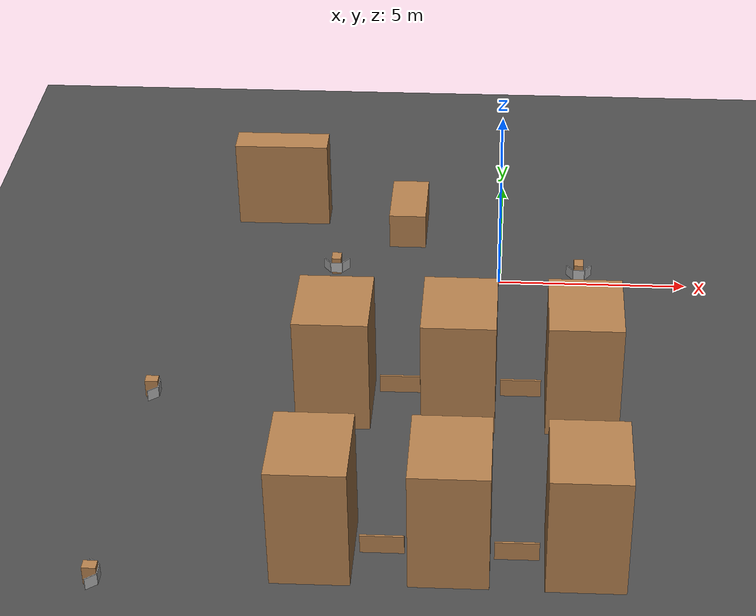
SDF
<sdf version="1.6">
 <world name="default">
  <model name="ground_plane">
   <static>1</static>
   <link name="link">
    <collision name="collision">
     <geometry><plane><normal>0 0 1</normal><size>100 100</size></plane></geometry>
     <surface><friction><ode><mu>100</mu><mu2>50</mu2></ode></friction></surface>
    </collision>
    <visual name="visual">
     <cast_shadows>0</cast_shadows>
     <geometry><plane><normal>0 0 1</normal><size>100 100</size></plane></geometry>
     <material>
      <script><uri>file://media/materials/scripts/gazebo.material</uri><name>Gazebo/DarkGrey</name></script>
     </material>
    </visual>
   </link>
  </model>
  <model name="unit_box_clone">
   <pose>-0.889956 -5.56511 1.53205 1e-06 0 0.000132</pose>
   <link name="link">
    <inertial>
     <mass>1</mass>
     <inertia>
      <ixx>0.166667</ixx>
      <ixy>0</ixy>
      <ixz>0</ixz>
      <iyy>0.166667</iyy>
      <iyz>0</iyz>
      <izz>0.166667</izz>
     </inertia>
    </inertial>
    <collision name="collision"><geometry><box><size>1.78607 2.17889 3.06409</size></box></geometry></collision>
    <visual name="visual">
     <geometry><box><size>1.78607 2.17889 3.06409</size></box></geometry>
     <material>
      <script><name>Gazebo/Wood</name><uri>file://media/materials/scripts/gazebo.material</uri></script>
     </material>
    </visual>
   </link>
  </model>
  <model name="unit_box_clone_0">
   <pose>2.11215 -5.52237 1.53205 -1e-06 0 0.00019</pose>
   <link name="link">
    <inertial>
     <mass>1</mass>
     <inertia>
      <ixx>0.166667</ixx>
      <ixy>0</ixy>
      <ixz>0</ixz>
      <iyy>0.166667</iyy>
      <iyz>0</iyz>
      <izz>0.166667</izz>
     </inertia>
    </inertial>
    <collision name="collision"><geometry><box><size>1.78607 2.17889 3.06409</size></box></geometry></collision>
    <visual name="visual">
     <geometry><box><size>1.78607 2.17889 3.06409</size></box></geometry>
     <material>
      <script><name>Gazebo/Wood</name><uri>file://media/materials/scripts/gazebo.material</uri></script>
     </material>
    </visual>
   </link>
  </model>
  <model name="unit_box_clone_6">
   <pose>-3.9254 -11.0743 1.53204 -2e-06 -0 0.000138</pose>
   <link name="link">
    <inertial>
     <mass>1</mass>
     <inertia>
      <ixx>0.166667</ixx>
      <ixy>0</ixy>
      <ixz>0</ixz>
      <iyy>0.166667</iyy>
      <iyz>0</iyz>
      <izz>0.166667</izz>
     </inertia>
    </inertial>
    <collision name="collision"><geometry><box><size>1.78607 2.17889 3.06409</size></box></geometry></collision>
    <visual name="visual">
     <geometry><box><size>1.78607 2.17889 3.06409</size></box></geometry>
     <material>
      <script><name>Gazebo/Wood</name><uri>file://media/materials/scripts/gazebo.material</uri></script>
     </material>
    </visual>
   </link>
  </model>
  <model name="unit_box_clone_7">
   <pose>-0.889964 -11.0603 1.53205 -1e-06 0 0.000154</pose>
   <link name="link">
    <inertial>
     <mass>1</mass>
     <inertia>
      <ixx>0.166667</ixx>
      <ixy>0</ixy>
      <ixz>0</ixz>
      <iyy>0.166667</iyy>
      <iyz>0</iyz>
      <izz>0.166667</izz>
     </inertia>
    </inertial>
    <collision name="collision"><geometry><box><size>1.78607 2.17889 3.06409</size></box></geometry></collision>
    <visual name="visual">
     <geometry><box><size>1.78607 2.17889 3.06409</size></box></geometry>
     <material>
      <script><name>Gazebo/Wood</name><uri>file://media/materials/scripts/gazebo.material</uri></script>
     </material>
    </visual>
   </link>
  </model>
  <model name="unit_box_clone_8">
   <pose>2.11025 -11.0781 1.53205 1e-06 0 0.00015</pose>
   <link name="link">
    <inertial>
     <mass>1</mass>
     <inertia>
      <ixx>0.166667</ixx>
      <ixy>0</ixy>
      <ixz>0</ixz>
      <iyy>0.166667</iyy>
      <iyz>0</iyz>
      <izz>0.166667</izz>
     </inertia>
    </inertial>
    <collision name="collision"><geometry><box><size>1.78607 2.17889 3.06409</size></box></geometry></collision>
    <visual name="visual">
     <geometry><box><size>1.78607 2.17889 3.06409</size></box></geometry>
     <material>
      <script><name>Gazebo/Wood</name><uri>file://media/materials/scripts/gazebo.material</uri></script>
     </material>
    </visual>
   </link>
  </model>
  <model name="Aruco tag100">
   <static>1</static>
   <link name="robot_link">
    <visual name="body_visual">
     <geometry><box><size>0.3 0.3 0.02</size></box></geometry>
     <material>
      <script><uri>model://tag_100/materials/scripts/tag.material</uri><name>aruco_tag_100</name></script>
     </material>
    </visual>
   </link>
   <pose>2.13797 0.140124 0.2 1.57 -0 0</pose>
  </model>
  <model name="Aruco tag100_clone">
   <static>1</static>
   <link name="robot_link">
    <visual name="body_visual">
     <geometry><box><size>0.3 0.3 0.02</size></box></geometry>
     <material>
      <script><uri>model://tag_100/materials/scripts/tag.material</uri><name>aruco_tag_100</name></script>
     </material>
    </visual>
   </link>
   <pose>1.89484 0.266603 0.2 1.57028 -0.000603 -0.96</pose>
  </model>
  <model name="Aruco tag100_clone_clone">
   <static>1</static>
   <link name="robot_link">
    <visual name="body_visual">
     <geometry><box><size>0.3 0.3 0.02</size></box></geometry>
     <material>
      <script><uri>model://tag_100/materials/scripts/tag.material</uri><name>aruco_tag_100</name></script>
     </material>
    </visual>
   </link>
   <pose>2.38303 0.266773 0.2 1.57028 -0.000603 0.96</pose>
  </model>
  <model name="Support_box_wood_0">
   <link name="link">
    <inertial>
     <mass>0.0406949</mass>
     <inertia>
      <ixx>0.00114102</ixx>
      <ixy>0</ixy>
      <ixz>0</ixz>
      <iyy>0.00102768</iyy>
      <iyz>0</iyz>
      <izz>0.000581951</izz>
     </inertia>
    </inertial>
    <pose>0.062754 0.860403 -0.243846 0 -0 0</pose>
    <visual name="visual">
     <geometry><box><size>0.252854 0.320175 0.483682</size></box></geometry>
     <material>
      <script><name>Gazebo/Wood</name><uri>file://media/materials/scripts/gazebo.material</uri></script>
      <shader type="vertex"><normal_map>__default__</normal_map></shader>
      <ambient>0.3 0.3 0.3 1</ambient>
      <diffuse>0.7 0.7 0.7 1</diffuse>
      <specular>0.01 0.01 0.01 1</specular>
      <emissive>0 0 0 1</emissive>
     </material>
    </visual>
    <visual name="ModelPreview_4::link::visual_1">
     <geometry><box><size>0.252854 0.320175 0.483682</size></box></geometry>
     <material>
      <script><name>Gazebo/Wood</name><uri>file://media/materials/scripts/gazebo.material</uri></script>
      <shader type="vertex"><normal_map>__default__</normal_map></shader>
      <ambient>0.3 0.3 0.3 1</ambient>
      <diffuse>0.7 0.7 0.7 1</diffuse>
      <specular>0.01 0.01 0.01 1</specular>
      <emissive>0 0 0 1</emissive>
     </material>
    </visual>
    <collision name="collision">
     <geometry><box><size>0.262854 0.320175 0.483683</size></box></geometry>
     <surface>
      <friction>
       <ode><mu>1</mu><mu2>1</mu2><fdir1>0 0 0</fdir1><slip1>0</slip1><slip2>0</slip2></ode>
       <torsional>
        <coefficient>1</coefficient>
        <patch_radius>0</patch_radius>
        <surface_radius>0</surface_radius>
        <use_patch_radius>1</use_patch_radius>
        <ode><slip>0</slip></ode>
       </torsional>
      </friction>
      <bounce><restitution_coefficient>0</restitution_coefficient><threshold>1e+06</threshold></bounce>
      <contact>
       <collide_without_contact>0</collide_without_contact>
       <collide_without_contact_bitmask>1</collide_without_contact_bitmask>
       <collide_bitmask>1</collide_bitmask>
       <ode>
        <soft_cfm>0</soft_cfm>
        <soft_erp>0.2</soft_erp>
        <kp>1e+13</kp>
        <kd>1</kd>
        <max_vel>0.01</max_vel>
        <min_depth>0</min_depth>
       </ode>
       <bullet>
        <split_impulse>1</split_impulse>
        <split_impulse_penetration_threshold>-0.01</split_impulse_penetration_threshold>
        <soft_cfm>0</soft_cfm>
        <soft_erp>0.2</soft_erp>
        <kp>1e+13</kp>
        <kd>1</kd>
       </bullet>
      </contact>
     </surface>
    </collision>
   </link>
   <static>0</static>
   <pose>-4.49737 -0.49187 0.485697 -1.3e-05 0 0.002179</pose>
  </model>
  <model name="Support_box_wood">
   <link name="link">
    <inertial>
     <mass>0.0406949</mass>
     <inertia>
      <ixx>0.00114102</ixx>
      <ixy>0</ixy>
      <ixz>0</ixz>
      <iyy>0.00102768</iyy>
      <iyz>0</iyz>
      <izz>0.000581951</izz>
     </inertia>
    </inertial>
    <pose>0.062754 0.860403 -0.243846 0 -0 0</pose>
    <visual name="visual">
     <geometry><box><size>0.252854 0.320175 0.483682</size></box></geometry>
     <material>
      <script><name>Gazebo/Wood</name><uri>file://media/materials/scripts/gazebo.material</uri></script>
      <shader type="vertex"><normal_map>__default__</normal_map></shader>
      <ambient>0.3 0.3 0.3 1</ambient>
      <diffuse>0.7 0.7 0.7 1</diffuse>
      <specular>0.01 0.01 0.01 1</specular>
      <emissive>0 0 0 1</emissive>
     </material>
    </visual>
    <visual name="ModelPreview_4::link::visual_1">
     <geometry><box><size>0.252854 0.320175 0.483682</size></box></geometry>
     <material>
      <script><name>Gazebo/Wood</name><uri>file://media/materials/scripts/gazebo.material</uri></script>
      <shader type="vertex"><normal_map>__default__</normal_map></shader>
      <ambient>0.3 0.3 0.3 1</ambient>
      <diffuse>0.7 0.7 0.7 1</diffuse>
      <specular>0.01 0.01 0.01 1</specular>
      <emissive>0 0 0 1</emissive>
     </material>
    </visual>
    <collision name="collision">
     <geometry><box><size>0.262854 0.320175 0.483683</size></box></geometry>
     <surface>
      <friction>
       <ode><mu>1</mu><mu2>1</mu2><fdir1>0 0 0</fdir1><slip1>0</slip1><slip2>0</slip2></ode>
       <torsional>
        <coefficient>1</coefficient>
        <patch_radius>0</patch_radius>
        <surface_radius>0</surface_radius>
        <use_patch_radius>1</use_patch_radius>
        <ode><slip>0</slip></ode>
       </torsional>
      </friction>
      <bounce><restitution_coefficient>0</restitution_coefficient><threshold>1e+06</threshold></bounce>
      <contact>
       <collide_without_contact>0</collide_without_contact>
       <collide_without_contact_bitmask>1</collide_without_contact_bitmask>
       <collide_bitmask>1</collide_bitmask>
       <ode>
        <soft_cfm>0</soft_cfm>
        <soft_erp>0.2</soft_erp>
        <kp>1e+13</kp>
        <kd>1</kd>
        <max_vel>0.01</max_vel>
        <min_depth>0</min_depth>
       </ode>
       <bullet>
        <split_impulse>1</split_impulse>
        <split_impulse_penetration_threshold>-0.01</split_impulse_penetration_threshold>
        <soft_cfm>0</soft_cfm>
        <soft_erp>0.2</soft_erp>
        <kp>1e+13</kp>
        <kd>1</kd>
       </bullet>
      </contact>
     </surface>
    </collision>
   </link>
   <static>0</static>
   <pose>-7.6449 -5.50951 0.485687 0 -0 1.57065</pose>
  </model>
  <model name="Aruco tag200">
   <static>1</static>
   <link name="robot_link">
    <visual name="body_visual">
     <geometry><box><size>0.3 0.3 0.02</size></box></geometry>
     <material>
      <script><uri>model://tag_200/materials/scripts/tag.material</uri><name>aruco_tag_200</name></script>
     </material>
    </visual>
   </link>
   <pose>-8.33203 -5.45397 0.2 3.14159 1.57 3.14159</pose>
  </model>
  <model name="Aruco tag200_clone">
   <static>1</static>
   <link name="robot_link">
    <visual name="body_visual">
     <geometry><box><size>0.3 0.3 0.02</size></box></geometry>
     <material>
      <script><uri>model://tag_200/materials/scripts/tag.material</uri><name>aruco_tag_200</name></script>
     </material>
    </visual>
   </link>
   <pose>-8.4533 -5.20272 0.2 -3.14088 1.57 0.91071</pose>
  </model>
  <model name="Aruco tag200_clone_clone">
   <static>1</static>
   <link name="robot_link">
    <visual name="body_visual">
     <geometry><box><size>0.3 0.3 0.02</size></box></geometry>
     <material>
      <script><uri>model://tag_200/materials/scripts/tag.material</uri><name>aruco_tag_200</name></script>
     </material>
    </visual>
   </link>
   <pose>-8.45452 -5.70482 0.2 3.14124 1.57 -0.911069</pose>
  </model>
  <model name="Support_box_wood_clone">
   <link name="link">
    <inertial>
     <mass>0.0406949</mass>
     <inertia>
      <ixx>0.00114102</ixx>
      <ixy>0</ixy>
      <ixz>0</ixz>
      <iyy>0.00102768</iyy>
      <iyz>0</iyz>
      <izz>0.000581951</izz>
     </inertia>
    </inertial>
    <pose>0.062754 0.860403 -0.243846 0 -0 0</pose>
    <visual name="visual">
     <geometry><box><size>0.252854 0.320175 0.483682</size></box></geometry>
     <material>
      <script><name>Gazebo/Wood</name><uri>file://media/materials/scripts/gazebo.material</uri></script>
      <shader type="vertex"><normal_map>__default__</normal_map></shader>
      <ambient>0.3 0.3 0.3 1</ambient>
      <diffuse>0.7 0.7 0.7 1</diffuse>
      <specular>0.01 0.01 0.01 1</specular>
      <emissive>0 0 0 1</emissive>
     </material>
    </visual>
    <visual name="ModelPreview_4::link::visual_1">
     <geometry><box><size>0.252854 0.320175 0.483682</size></box></geometry>
     <material>
      <script><name>Gazebo/Wood</name><uri>file://media/materials/scripts/gazebo.material</uri></script>
      <shader type="vertex"><normal_map>__default__</normal_map></shader>
      <ambient>0.3 0.3 0.3 1</ambient>
      <diffuse>0.7 0.7 0.7 1</diffuse>
      <specular>0.01 0.01 0.01 1</specular>
      <emissive>0 0 0 1</emissive>
     </material>
    </visual>
    <collision name="collision">
     <geometry><box><size>0.262854 0.320175 0.483683</size></box></geometry>
     <surface>
      <friction>
       <ode><mu>1</mu><mu2>1</mu2><fdir1>0 0 0</fdir1><slip1>0</slip1><slip2>0</slip2></ode>
       <torsional>
        <coefficient>1</coefficient>
        <patch_radius>0</patch_radius>
        <surface_radius>0</surface_radius>
        <use_patch_radius>1</use_patch_radius>
        <ode><slip>0</slip></ode>
       </torsional>
      </friction>
      <bounce><restitution_coefficient>0</restitution_coefficient><threshold>1e+06</threshold></bounce>
      <contact>
       <collide_without_contact>0</collide_without_contact>
       <collide_without_contact_bitmask>1</collide_without_contact_bitmask>
       <collide_bitmask>1</collide_bitmask>
       <ode>
        <soft_cfm>0</soft_cfm>
        <soft_erp>0.2</soft_erp>
        <kp>1e+13</kp>
        <kd>1</kd>
        <max_vel>0.01</max_vel>
        <min_depth>0</min_depth>
       </ode>
       <bullet>
        <split_impulse>1</split_impulse>
        <split_impulse_penetration_threshold>-0.01</split_impulse_penetration_threshold>
        <soft_cfm>0</soft_cfm>
        <soft_erp>0.2</soft_erp>
        <kp>1e+13</kp>
        <kd>1</kd>
       </bullet>
      </contact>
     </surface>
    </collision>
   </link>
   <static>0</static>
   <pose>2.06843 -0.552281 0.485687 0 -0 4e-06</pose>
  </model>
  <model name="Aruco tag101">
   <static>1</static>
   <link name="robot_link">
    <visual name="body_visual">
     <geometry><box><size>0.3 0.3 0.02</size></box></geometry>
     <material>
      <script><uri>model://tag_101/materials/scripts/tag.material</uri><name>aruco_tag_101</name></script>
     </material>
    </visual>
   </link>
   <pose>-4.43997 0.20897 0.2 1.57 -0 0</pose>
  </model>
  <model name="Aruco tag101_clone">
   <static>1</static>
   <link name="robot_link">
    <visual name="body_visual">
     <geometry><box><size>0.3 0.3 0.02</size></box></geometry>
     <material>
      <script><uri>model://tag_101/materials/scripts/tag.material</uri><name>aruco_tag_101</name></script>
     </material>
    </visual>
   </link>
   <pose>-4.18968 0.331448 0.2 1.57 -0 0.909999</pose>
  </model>
  <model name="Aruco tag101_clone_clone">
   <static>1</static>
   <link name="robot_link">
    <visual name="body_visual">
     <geometry><box><size>0.3 0.3 0.02</size></box></geometry>
     <material>
      <script><uri>model://tag_101/materials/scripts/tag.material</uri><name>aruco_tag_101</name></script>
     </material>
    </visual>
   </link>
   <pose>-4.69039 0.331481 0.2 1.57 -0 -0.909999</pose>
  </model>
  <model name="Support_box_wood_clone_0">
   <link name="link">
    <inertial>
     <mass>0.0406949</mass>
     <inertia>
      <ixx>0.00114102</ixx>
      <ixy>0</ixy>
      <ixz>0</ixz>
      <iyy>0.00102768</iyy>
      <iyz>0</iyz>
      <izz>0.000581951</izz>
     </inertia>
    </inertial>
    <pose>0.062754 0.860403 -0.243846 0 -0 0</pose>
    <visual name="visual">
     <geometry><box><size>0.252854 0.320175 0.483682</size></box></geometry>
     <material>
      <script><name>Gazebo/Wood</name><uri>file://media/materials/scripts/gazebo.material</uri></script>
      <shader type="vertex"><normal_map>__default__</normal_map></shader>
      <ambient>0.3 0.3 0.3 1</ambient>
      <diffuse>0.7 0.7 0.7 1</diffuse>
      <specular>0.01 0.01 0.01 1</specular>
      <emissive>0 0 0 1</emissive>
     </material>
    </visual>
    <visual name="ModelPreview_4::link::visual_1">
     <geometry><box><size>0.252854 0.320175 0.483682</size></box></geometry>
     <material>
      <script><name>Gazebo/Wood</name><uri>file://media/materials/scripts/gazebo.material</uri></script>
      <shader type="vertex"><normal_map>__default__</normal_map></shader>
      <ambient>0.3 0.3 0.3 1</ambient>
      <diffuse>0.7 0.7 0.7 1</diffuse>
      <specular>0.01 0.01 0.01 1</specular>
      <emissive>0 0 0 1</emissive>
     </material>
    </visual>
    <collision name="collision">
     <geometry><box><size>0.262854 0.320175 0.483683</size></box></geometry>
     <surface>
      <friction>
       <ode><mu>1</mu><mu2>1</mu2><fdir1>0 0 0</fdir1><slip1>0</slip1><slip2>0</slip2></ode>
       <torsional>
        <coefficient>1</coefficient>
        <patch_radius>0</patch_radius>
        <surface_radius>0</surface_radius>
        <use_patch_radius>1</use_patch_radius>
        <ode><slip>0</slip></ode>
       </torsional>
      </friction>
      <bounce><restitution_coefficient>0</restitution_coefficient><threshold>1e+06</threshold></bounce>
      <contact>
       <collide_without_contact>0</collide_without_contact>
       <collide_without_contact_bitmask>1</collide_without_contact_bitmask>
       <collide_bitmask>1</collide_bitmask>
       <ode>
        <soft_cfm>0</soft_cfm>
        <soft_erp>0.2</soft_erp>
        <kp>1e+13</kp>
        <kd>1</kd>
        <max_vel>0.01</max_vel>
        <min_depth>0</min_depth>
       </ode>
       <bullet>
        <split_impulse>1</split_impulse>
        <split_impulse_penetration_threshold>-0.01</split_impulse_penetration_threshold>
        <soft_cfm>0</soft_cfm>
        <soft_erp>0.2</soft_erp>
        <kp>1e+13</kp>
        <kd>1</kd>
       </bullet>
      </contact>
     </surface>
    </collision>
   </link>
   <static>0</static>
   <pose>-7.84329 -12.327 0.485687 0 -0 1.57129</pose>
  </model>
  <model name="Aruco tag103">
   <static>1</static>
   <link name="robot_link">
    <visual name="body_visual">
     <geometry><box><size>0.3 0.3 0.02</size></box></geometry>
     <material>
      <script><uri>model://tag_103/materials/scripts/tag.material</uri><name>aruco_tag_103</name></script>
     </material>
    </visual>
   </link>
   <pose>-8.5298 -12.2644 0.2 -5.1e-05 1.57 5.1e-05</pose>
  </model>
  <model name="Aruco tag103_clone">
   <static>1</static>
   <link name="robot_link">
    <visual name="body_visual">
     <geometry><box><size>0.3 0.3 0.02</size></box></geometry>
     <material>
      <script><uri>model://tag_103/materials/scripts/tag.material</uri><name>aruco_tag_103</name></script>
     </material>
    </visual>
   </link>
   <pose>-8.64959 -12.0145 0.2 -0.001656 1.57 0.909889</pose>
  </model>
  <model name="Aruco tag103_clone_clone">
   <static>1</static>
   <link name="robot_link">
    <visual name="body_visual">
     <geometry><box><size>0.3 0.3 0.02</size></box></geometry>
     <material>
      <script><uri>model://tag_103/materials/scripts/tag.material</uri><name>aruco_tag_103</name></script>
     </material>
    </visual>
   </link>
   <pose>-8.65279 -12.5152 0.2 -0.001545 1.57 -0.911442</pose>
  </model>
  <model name="unit_box_0">
   <link name="link">
    <inertial>
     <mass>206.513</mass>
     <inertia><ixx>115.69</ixx><ixy>0</ixy><ixz>0</ixz><iyy>216.208</iyy><iyz>0</iyz><izz>122.645</izz></inertia>
    </inertial>
    <pose>0 0.254021 0.771856 0 -0 0</pose>
    <visual name="visual">
     <geometry><box><size>2.54631 0.801811 2.46568</size></box></geometry>
     <material>
      <script><name>Gazebo/Wood</name><uri>file://media/materials/scripts/gazebo.material</uri></script>
     </material>
    </visual>
    <collision name="collision">
     <geometry><box><size>2.54631 0.801811 2.46568</size></box></geometry>
     <surface>
      <friction>
       <ode><mu>1</mu><mu2>1</mu2><fdir1>0 0 0</fdir1><slip1>0</slip1><slip2>0</slip2></ode>
       <torsional>
        <coefficient>1</coefficient>
        <patch_radius>0</patch_radius>
        <surface_radius>0</surface_radius>
        <use_patch_radius>1</use_patch_radius>
        <ode><slip>0</slip></ode>
       </torsional>
      </friction>
      <bounce><restitution_coefficient>0</restitution_coefficient><threshold>1e+06</threshold></bounce>
      <contact>
       <collide_without_contact>0</collide_without_contact>
       <collide_without_contact_bitmask>1</collide_without_contact_bitmask>
       <collide_bitmask>1</collide_bitmask>
       <ode>
        <soft_cfm>0</soft_cfm>
        <soft_erp>0.2</soft_erp>
        <kp>1e+13</kp>
        <kd>1</kd>
        <max_vel>0.01</max_vel>
        <min_depth>0</min_depth>
       </ode>
       <bullet>
        <split_impulse>1</split_impulse>
        <split_impulse_penetration_threshold>-0.01</split_impulse_penetration_threshold>
        <soft_cfm>0</soft_cfm>
        <soft_erp>0.2</soft_erp>
        <kp>1e+13</kp>
        <kd>1</kd>
       </bullet>
      </contact>
     </surface>
    </collision>
   </link>
   <static>0</static>
   <pose>-6.14285 2.9103 0.460984 1e-06 -0 0.005648</pose>
  </model>
  <model name="unit_box_1">
   <link name="link">
    <inertial>
     <mass>4.46992</mass>
     <inertia><ixx>1.7353</ixx><ixy>0</ixy><ixz>0</ixz><iyy>0.744987</iyy><iyz>0</iyz><izz>1.7353</izz></inertia>
    </inertial>
    <visual name="visual">
     <geometry><box><size>1 1.91274 1</size></box></geometry>
     <material>
      <script><name>Gazebo/Wood</name><uri>file://media/materials/scripts/gazebo.material</uri></script>
     </material>
    </visual>
    <collision name="collision">
     <geometry><box><size>1 1.91274 1</size></box></geometry>
     <surface>
      <friction>
       <ode><mu>1</mu><mu2>1</mu2><fdir1>0 0 0</fdir1><slip1>0</slip1><slip2>0</slip2></ode>
       <torsional>
        <coefficient>1</coefficient>
        <patch_radius>0</patch_radius>
        <surface_radius>0</surface_radius>
        <use_patch_radius>1</use_patch_radius>
        <ode><slip>0</slip></ode>
       </torsional>
      </friction>
      <bounce><restitution_coefficient>0</restitution_coefficient><threshold>1e+06</threshold></bounce>
      <contact>
       <collide_without_contact>0</collide_without_contact>
       <collide_without_contact_bitmask>1</collide_without_contact_bitmask>
       <collide_bitmask>1</collide_bitmask>
       <ode>
        <soft_cfm>0</soft_cfm>
        <soft_erp>0.2</soft_erp>
        <kp>1e+13</kp>
        <kd>1</kd>
        <max_vel>0.01</max_vel>
        <min_depth>0</min_depth>
       </ode>
       <bullet>
        <split_impulse>1</split_impulse>
        <split_impulse_penetration_threshold>-0.01</split_impulse_penetration_threshold>
        <soft_cfm>0</soft_cfm>
        <soft_erp>0.2</soft_erp>
        <kp>1e+13</kp>
        <kd>1</kd>
       </bullet>
      </contact>
     </surface>
    </collision>
   </link>
   <static>0</static>
   <pose>-2.58138 2.6093 0.5 0 -0 1e-06</pose>
  </model>
  <model name="unit_box">
   <link name="link">
    <inertial>
     <mass>1648.57</mass>
     <inertia><ixx>1879.79</ixx><ixy>0</ixy><ixz>0</ixz><iyy>1718.68</iyy><iyz>0</iyz><izz>1060.42</izz></inertia>
    </inertial>
    <pose>-0 -0 -1.39134 0 -0 0</pose>
    <visual name="visual">
     <geometry><box><size>1.80916 2.1085 3.03929</size></box></geometry>
     <material>
      <script><name>Gazebo/Wood</name><uri>file://media/materials/scripts/gazebo.material</uri></script>
     </material>
    </visual>
    <collision name="collision">
     <geometry><box><size>1.80916 2.1085 3.03929</size></box></geometry>
     <surface>
      <friction>
       <ode><mu>1</mu><mu2>1</mu2><fdir1>0 0 0</fdir1><slip1>0</slip1><slip2>0</slip2></ode>
       <torsional>
        <coefficient>1</coefficient>
        <patch_radius>0</patch_radius>
        <surface_radius>0</surface_radius>
        <use_patch_radius>1</use_patch_radius>
        <ode><slip>0</slip></ode>
       </torsional>
      </friction>
      <bounce><restitution_coefficient>0</restitution_coefficient><threshold>1e+06</threshold></bounce>
      <contact>
       <collide_without_contact>0</collide_without_contact>
       <collide_without_contact_bitmask>1</collide_without_contact_bitmask>
       <collide_bitmask>1</collide_bitmask>
       <ode>
        <soft_cfm>0</soft_cfm>
        <soft_erp>0.2</soft_erp>
        <kp>1e+13</kp>
        <kd>1</kd>
        <max_vel>0.01</max_vel>
        <min_depth>0</min_depth>
       </ode>
       <bullet>
        <split_impulse>1</split_impulse>
        <split_impulse_penetration_threshold>-0.01</split_impulse_penetration_threshold>
        <soft_cfm>0</soft_cfm>
        <soft_erp>0.2</soft_erp>
        <kp>1e+13</kp>
        <kd>1</kd>
       </bullet>
      </contact>
     </surface>
    </collision>
   </link>
   <static>0</static>
   <pose>-3.91562 -5.5599 2.91099 0 -0 0.000128</pose>
  </model>
  <model name="fence_clone_1">
   <link name="link">
    <inertial>
     <mass>0.0236206</mass>
     <inertia>
      <ixx>0.00046005</ixx>
      <ixy>0</ixy>
      <ixz>0</ixz>
      <iyy>0.00242368</iyy>
      <iyz>0</iyz>
      <izz>0.00197313</izz>
     </inertia>
    </inertial>
    <pose>0.164119 -0.397459 0.001761 0 -0 0</pose>
    <visual name="visual">
     <geometry><box><size>1 0.049108 0.480943</size></box></geometry>
     <material>
      <script><name>Gazebo/Wood</name><uri>file://media/materials/scripts/gazebo.material</uri></script>
      <shader type="pixel"><normal_map>__default__</normal_map></shader>
      <ambient>1 1 1 1</ambient>
      <diffuse>1 1 1 1</diffuse>
      <specular>0.2 0.2 0.2 1</specular>
      <emissive>0 0 0 1</emissive>
     </material>
    </visual>
    <collision name="collision">
     <geometry><box><size>1 0.049108 0.480943</size></box></geometry>
     <surface>
      <friction>
       <ode><mu>1</mu><mu2>1</mu2><fdir1>0 0 0</fdir1><slip1>0</slip1><slip2>0</slip2></ode>
       <torsional>
        <coefficient>1</coefficient>
        <patch_radius>0</patch_radius>
        <surface_radius>0</surface_radius>
        <use_patch_radius>1</use_patch_radius>
        <ode><slip>0</slip></ode>
       </torsional>
      </friction>
      <bounce><restitution_coefficient>0</restitution_coefficient><threshold>1e+06</threshold></bounce>
      <contact>
       <collide_without_contact>0</collide_without_contact>
       <collide_without_contact_bitmask>1</collide_without_contact_bitmask>
       <collide_bitmask>1</collide_bitmask>
       <ode>
        <soft_cfm>0</soft_cfm>
        <soft_erp>0.2</soft_erp>
        <kp>1e+13</kp>
        <kd>1</kd>
        <max_vel>0.01</max_vel>
        <min_depth>0</min_depth>
       </ode>
       <bullet>
        <split_impulse>1</split_impulse>
        <split_impulse_penetration_threshold>-0.01</split_impulse_penetration_threshold>
        <soft_cfm>0</soft_cfm>
        <soft_erp>0.2</soft_erp>
        <kp>1e+13</kp>
        <kd>1</kd>
       </bullet>
      </contact>
     </surface>
    </collision>
   </link>
   <static>0</static>
   <pose>0.428148 -10.7336 0.238705 1e-06 -9e-06 0.004582</pose>
  </model>
  <model name="fence_clone_2">
   <link name="link">
    <inertial>
     <mass>0.0236206</mass>
     <inertia>
      <ixx>0.00046005</ixx>
      <ixy>0</ixy>
      <ixz>0</ixz>
      <iyy>0.00242368</iyy>
      <iyz>0</iyz>
      <izz>0.00197313</izz>
     </inertia>
    </inertial>
    <pose>0.164119 -0.397459 0.001761 0 -0 0</pose>
    <visual name="visual">
     <geometry><box><size>1 0.049108 0.480943</size></box></geometry>
     <material>
      <script><name>Gazebo/Wood</name><uri>file://media/materials/scripts/gazebo.material</uri></script>
      <shader type="pixel"><normal_map>__default__</normal_map></shader>
      <ambient>1 1 1 1</ambient>
      <diffuse>1 1 1 1</diffuse>
      <specular>0.2 0.2 0.2 1</specular>
      <emissive>0 0 0 1</emissive>
     </material>
    </visual>
    <collision name="collision">
     <geometry><box><size>1 0.049108 0.480943</size></box></geometry>
     <surface>
      <friction>
       <ode><mu>1</mu><mu2>1</mu2><fdir1>0 0 0</fdir1><slip1>0</slip1><slip2>0</slip2></ode>
       <torsional>
        <coefficient>1</coefficient>
        <patch_radius>0</patch_radius>
        <surface_radius>0</surface_radius>
        <use_patch_radius>1</use_patch_radius>
        <ode><slip>0</slip></ode>
       </torsional>
      </friction>
      <bounce><restitution_coefficient>0</restitution_coefficient><threshold>1e+06</threshold></bounce>
      <contact>
       <collide_without_contact>0</collide_without_contact>
       <collide_without_contact_bitmask>1</collide_without_contact_bitmask>
       <collide_bitmask>1</collide_bitmask>
       <ode>
        <soft_cfm>0</soft_cfm>
        <soft_erp>0.2</soft_erp>
        <kp>1e+13</kp>
        <kd>1</kd>
        <max_vel>0.01</max_vel>
        <min_depth>0</min_depth>
       </ode>
       <bullet>
        <split_impulse>1</split_impulse>
        <split_impulse_penetration_threshold>-0.01</split_impulse_penetration_threshold>
        <soft_cfm>0</soft_cfm>
        <soft_erp>0.2</soft_erp>
        <kp>1e+13</kp>
        <kd>1</kd>
       </bullet>
      </contact>
     </surface>
    </collision>
   </link>
   <static>0</static>
   <pose>-2.57306 -10.6392 0.238708 1e-06 9e-06 -0.000526</pose>
  </model>
  <model name="fence_clone_3">
   <link name="link">
    <inertial>
     <mass>0.0236206</mass>
     <inertia>
      <ixx>0.00046005</ixx>
      <ixy>0</ixy>
      <ixz>0</ixz>
      <iyy>0.00242368</iyy>
      <iyz>0</iyz>
      <izz>0.00197313</izz>
     </inertia>
    </inertial>
    <pose>0.164119 -0.397459 0.001761 0 -0 0</pose>
    <visual name="visual">
     <geometry><box><size>1 0.049108 0.480943</size></box></geometry>
     <material>
      <script><name>Gazebo/Wood</name><uri>file://media/materials/scripts/gazebo.material</uri></script>
      <shader type="pixel"><normal_map>__default__</normal_map></shader>
      <ambient>1 1 1 1</ambient>
      <diffuse>1 1 1 1</diffuse>
      <specular>0.2 0.2 0.2 1</specular>
      <emissive>0 0 0 1</emissive>
     </material>
    </visual>
    <collision name="collision">
     <geometry><box><size>1 0.049108 0.480943</size></box></geometry>
     <surface>
      <friction>
       <ode><mu>1</mu><mu2>1</mu2><fdir1>0 0 0</fdir1><slip1>0</slip1><slip2>0</slip2></ode>
       <torsional>
        <coefficient>1</coefficient>
        <patch_radius>0</patch_radius>
        <surface_radius>0</surface_radius>
        <use_patch_radius>1</use_patch_radius>
        <ode><slip>0</slip></ode>
       </torsional>
      </friction>
      <bounce><restitution_coefficient>0</restitution_coefficient><threshold>1e+06</threshold></bounce>
      <contact>
       <collide_without_contact>0</collide_without_contact>
       <collide_without_contact_bitmask>1</collide_without_contact_bitmask>
       <collide_bitmask>1</collide_bitmask>
       <ode>
        <soft_cfm>0</soft_cfm>
        <soft_erp>0.2</soft_erp>
        <kp>1e+13</kp>
        <kd>1</kd>
        <max_vel>0.01</max_vel>
        <min_depth>0</min_depth>
       </ode>
       <bullet>
        <split_impulse>1</split_impulse>
        <split_impulse_penetration_threshold>-0.01</split_impulse_penetration_threshold>
        <soft_cfm>0</soft_cfm>
        <soft_erp>0.2</soft_erp>
        <kp>1e+13</kp>
        <kd>1</kd>
       </bullet>
      </contact>
     </surface>
    </collision>
   </link>
   <static>0</static>
   <pose>-2.53955 -4.65469 0.238705 1e-06 -9e-06 0.004581</pose>
  </model>
  <model name="fence_clone_4">
   <link name="link">
    <inertial>
     <mass>0.0236206</mass>
     <inertia>
      <ixx>0.00046005</ixx>
      <ixy>0</ixy>
      <ixz>0</ixz>
      <iyy>0.00242368</iyy>
      <iyz>0</iyz>
      <izz>0.00197313</izz>
     </inertia>
    </inertial>
    <pose>0.164119 -0.397459 0.001761 0 -0 0</pose>
    <visual name="visual">
     <geometry><box><size>1 0.049108 0.480943</size></box></geometry>
     <material>
      <script><name>Gazebo/Wood</name><uri>file://media/materials/scripts/gazebo.material</uri></script>
      <shader type="pixel"><normal_map>__default__</normal_map></shader>
      <ambient>1 1 1 1</ambient>
      <diffuse>1 1 1 1</diffuse>
      <specular>0.2 0.2 0.2 1</specular>
      <emissive>0 0 0 1</emissive>
     </material>
    </visual>
    <collision name="collision">
     <geometry><box><size>1 0.049108 0.480943</size></box></geometry>
     <surface>
      <friction>
       <ode><mu>1</mu><mu2>1</mu2><fdir1>0 0 0</fdir1><slip1>0</slip1><slip2>0</slip2></ode>
       <torsional>
        <coefficient>1</coefficient>
        <patch_radius>0</patch_radius>
        <surface_radius>0</surface_radius>
        <use_patch_radius>1</use_patch_radius>
        <ode><slip>0</slip></ode>
       </torsional>
      </friction>
      <bounce><restitution_coefficient>0</restitution_coefficient><threshold>1e+06</threshold></bounce>
      <contact>
       <collide_without_contact>0</collide_without_contact>
       <collide_without_contact_bitmask>1</collide_without_contact_bitmask>
       <collide_bitmask>1</collide_bitmask>
       <ode>
        <soft_cfm>0</soft_cfm>
        <soft_erp>0.2</soft_erp>
        <kp>1e+13</kp>
        <kd>1</kd>
        <max_vel>0.01</max_vel>
        <min_depth>0</min_depth>
       </ode>
       <bullet>
        <split_impulse>1</split_impulse>
        <split_impulse_penetration_threshold>-0.01</split_impulse_penetration_threshold>
        <soft_cfm>0</soft_cfm>
        <soft_erp>0.2</soft_erp>
        <kp>1e+13</kp>
        <kd>1</kd>
       </bullet>
      </contact>
     </surface>
    </collision>
   </link>
   <static>0</static>
   <pose>0.448219 -4.69234 0.238707 -1e-06 9e-06 0.00452</pose>
  </model>
 </world>
</sdf>
